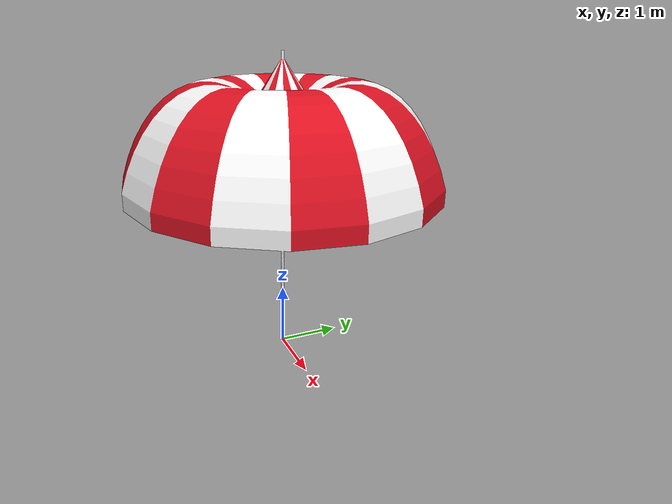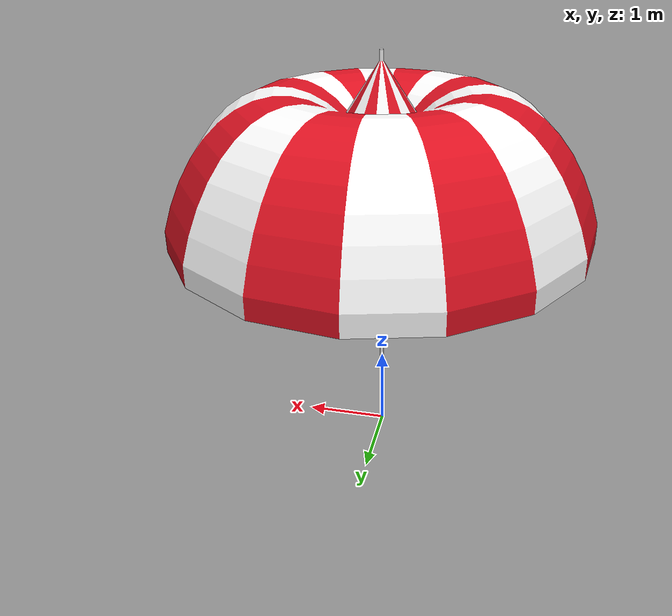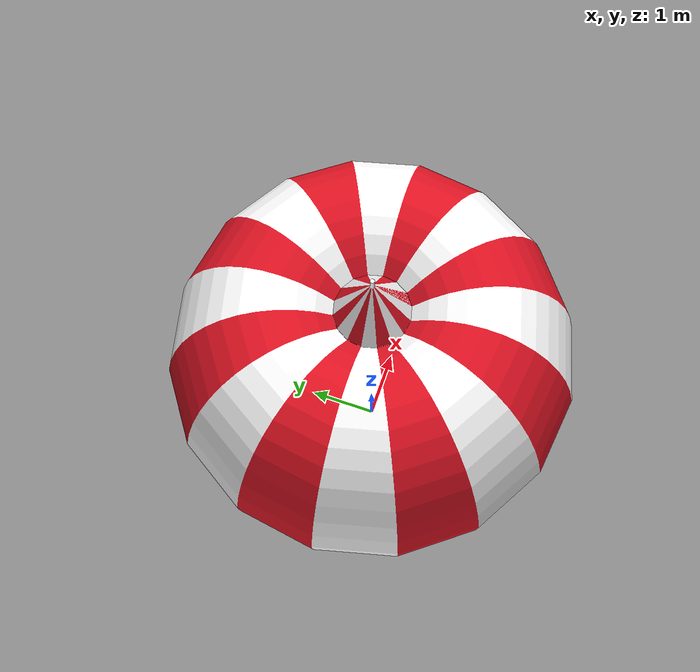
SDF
<?xml version="1.0" ?>
<sdf version='1.5'>
  <model name='parasol'>
    <static>true</static>
      <link name='parasol'>
        <pose frame=''>0 0 0 0 0 0</pose>
        <visual name='parasol'>
          <geometry>
            <mesh>
              <scale>1 1 1</scale>
              <uri>model://parasol/model.dae</uri>
            </mesh>
          </geometry>
          <material>
            <script>
              <name>parasol</name>
              <uri>model://parasol/model.dae</uri>
            </script>
          </material>
        </visual>
      </link>
  </model>
</sdf>
